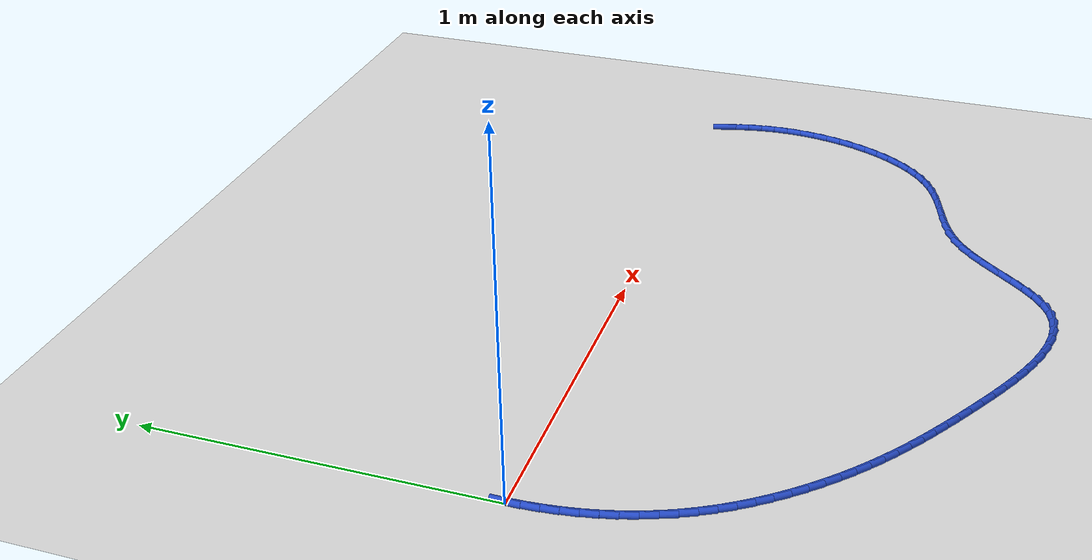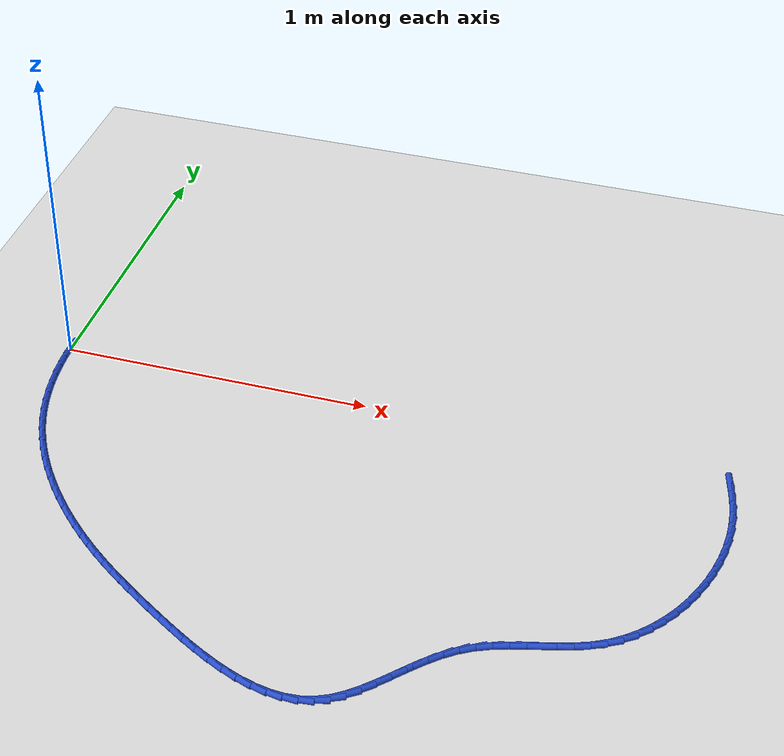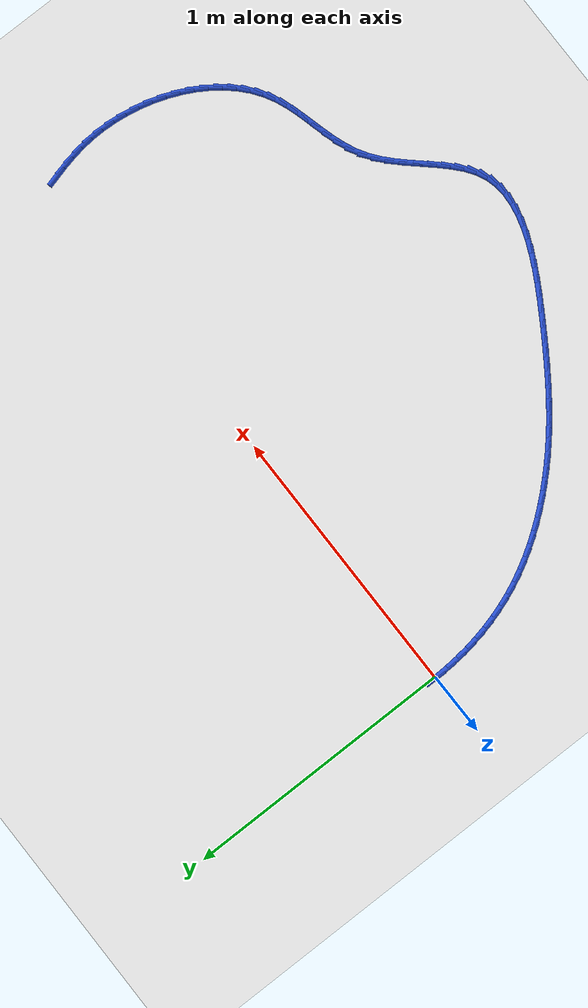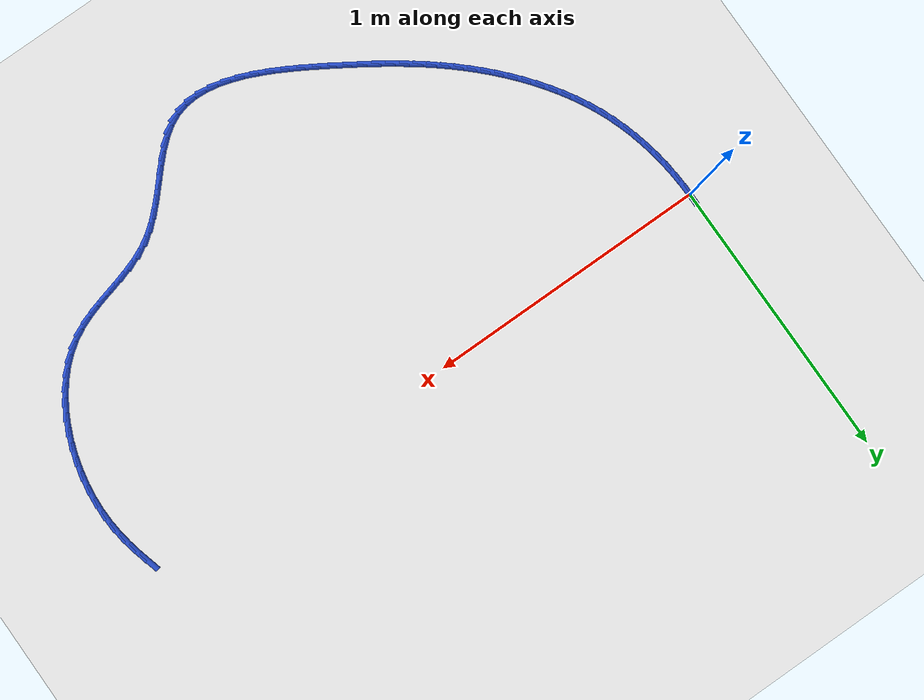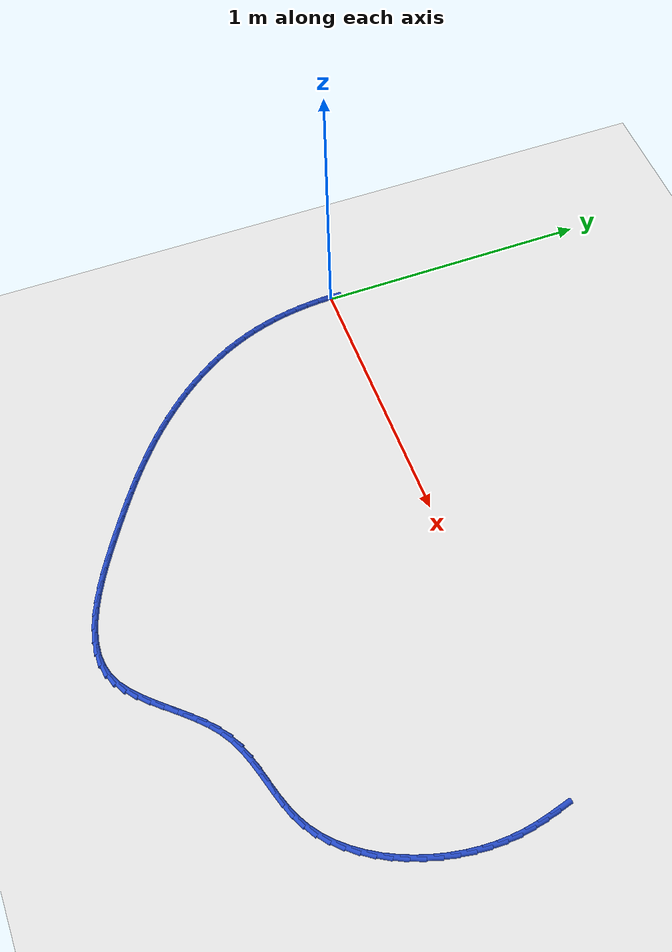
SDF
<sdf version="1.6">
 <world name="default">
  <model name="ground_plane">
   <static>1</static>
   <link name="link">
    <collision name="collision">
     <geometry><plane><normal>0 0 1</normal><size>100 100</size></plane></geometry>
     <surface><friction><ode><mu>100</mu><mu2>50</mu2></ode></friction></surface>
    </collision>
    <visual name="visual">
     <cast_shadows>0</cast_shadows>
     <geometry><plane><normal>0 0 1</normal><size>100 100</size></plane></geometry>
     <material>
      <script><uri>file://media/materials/scripts/gazebo.material</uri><name>Gazebo/WhiteGlow</name></script>
     </material>
    </visual>
   </link>
  </model>
  <model name="line">
   <link name="link_0">
    <pose>1.3877787807814457e-17 5.551115123125783e-17 0.01 0 1.57 1.5592415032549907</pose>
    <collision name="collision">
     <geometry><cylinder><radius>0.01</radius><length>0.08</length></cylinder></geometry>
    </collision>
    <visual name="visual">
     <material>
      <script><name>Gazebo/Blue</name><uri>file://media/materials/scripts/gazebo.material</uri></script>
     </material>
     <geometry><cylinder><radius>0.01</radius><length>0.08</length></cylinder></geometry>
    </visual>
   </link>
   <link name="link_75">
    <pose>2.1469257706747173 -0.03693103898274958 0.01 0 1.57 -1.3127066350233874</pose>
    <collision name="collision">
     <geometry><cylinder><radius>0.01</radius><length>0.08</length></cylinder></geometry>
    </collision>
    <visual name="visual">
     <material>
      <script><name>Gazebo/Blue</name><uri>file://media/materials/scripts/gazebo.material</uri></script>
     </material>
     <geometry><cylinder><radius>0.01</radius><length>0.08</length></cylinder></geometry>
    </visual>
   </link>
   <link name="link_76">
    <pose>2.158697349475804 -0.08152422373255834 0.01 0 1.57 -1.3564872859065393</pose>
    <collision name="collision">
     <geometry><cylinder><radius>0.01</radius><length>0.08</length></cylinder></geometry>
    </collision>
    <visual name="visual">
     <material>
      <script><name>Gazebo/Blue</name><uri>file://media/materials/scripts/gazebo.material</uri></script>
     </material>
     <geometry><cylinder><radius>0.01</radius><length>0.08</length></cylinder></geometry>
    </visual>
   </link>
   <link name="link_77">
    <pose>2.1685465352098947 -0.12677633400287774 0.01 0 1.57 -1.4130904748997954</pose>
    <collision name="collision">
     <geometry><cylinder><radius>0.01</radius><length>0.08</length></cylinder></geometry>
    </collision>
    <visual name="visual">
     <material>
      <script><name>Gazebo/Blue</name><uri>file://media/materials/scripts/gazebo.material</uri></script>
     </material>
     <geometry><cylinder><radius>0.01</radius><length>0.08</length></cylinder></geometry>
    </visual>
   </link>
   <link name="link_78">
    <pose>2.1758812569336135 -0.17289899180812152 0.01 0 1.57 -1.4814618211454147</pose>
    <collision name="collision">
     <geometry><cylinder><radius>0.01</radius><length>0.08</length></cylinder></geometry>
    </collision>
    <visual name="visual">
     <material>
      <script><name>Gazebo/Blue</name><uri>file://media/materials/scripts/gazebo.material</uri></script>
     </material>
     <geometry><cylinder><radius>0.01</radius><length>0.08</length></cylinder></geometry>
    </visual>
   </link>
   <link name="link_79">
    <pose>2.1801095236306853 -0.2201037372347708 0.01 0 1.57 -1.5568854090320874</pose>
    <collision name="collision">
     <geometry><cylinder><radius>0.01</radius><length>0.08</length></cylinder></geometry>
    </collision>
    <visual name="visual">
     <material>
      <script><name>Gazebo/Blue</name><uri>file://media/materials/scripts/gazebo.material</uri></script>
     </material>
     <geometry><cylinder><radius>0.01</radius><length>0.08</length></cylinder></geometry>
    </visual>
   </link>
   <link name="link_80">
    <pose>2.1807821870841124 -0.26845569175613304 0.01 0 1.57 1.5119288705914413</pose>
    <collision name="collision">
     <geometry><cylinder><radius>0.01</radius><length>0.08</length></cylinder></geometry>
    </collision>
    <visual name="visual">
     <material>
      <script><name>Gazebo/Blue</name><uri>file://media/materials/scripts/gazebo.material</uri></script>
     </material>
     <geometry><cylinder><radius>0.01</radius><length>0.08</length></cylinder></geometry>
    </visual>
   </link>
   <link name="link_81">
    <pose>2.177887513269734 -0.3175716127710212 0.01 0 1.57 1.4421809560744194</pose>
    <collision name="collision">
     <geometry><cylinder><radius>0.01</radius><length>0.08</length></cylinder></geometry>
    </collision>
    <visual name="visual">
     <material>
      <script><name>Gazebo/Blue</name><uri>file://media/materials/scripts/gazebo.material</uri></script>
     </material>
     <geometry><cylinder><radius>0.01</radius><length>0.08</length></cylinder></geometry>
    </visual>
   </link>
   <link name="link_82">
    <pose>2.171497209565089 -0.3669827274703546 0.01 0 1.57 1.3740507795493337</pose>
    <collision name="collision">
     <geometry><cylinder><radius>0.01</radius><length>0.08</length></cylinder></geometry>
    </collision>
    <visual name="visual">
     <material>
      <script><name>Gazebo/Blue</name><uri>file://media/materials/scripts/gazebo.material</uri></script>
     </material>
     <geometry><cylinder><radius>0.01</radius><length>0.08</length></cylinder></geometry>
    </visual>
   </link>
   <link name="link_83">
    <pose>2.1616829833477142 -0.4162202630450522 0.01 0 1.57 1.3062073753613277</pose>
    <collision name="collision">
     <geometry><cylinder><radius>0.01</radius><length>0.08</length></cylinder></geometry>
    </collision>
    <visual name="visual">
     <material>
      <script><name>Gazebo/Blue</name><uri>file://media/materials/scripts/gazebo.material</uri></script>
     </material>
     <geometry><cylinder><radius>0.01</radius><length>0.08</length></cylinder></geometry>
    </visual>
   </link>
   <link name="link_84">
    <pose>2.1485165419951495 -0.4648154466860362 0.01 0 1.57 1.2373609760402897</pose>
    <collision name="collision">
     <geometry><cylinder><radius>0.01</radius><length>0.08</length></cylinder></geometry>
    </collision>
    <visual name="visual">
     <material>
      <script><name>Gazebo/Blue</name><uri>file://media/materials/scripts/gazebo.material</uri></script>
     </material>
     <geometry><cylinder><radius>0.01</radius><length>0.08</length></cylinder></geometry>
    </visual>
   </link>
   <link name="link_85">
    <pose>2.1320695928849327 -0.5122995055842243 0.01 0 1.57 1.1662259677164022</pose>
    <collision name="collision">
     <geometry><cylinder><radius>0.01</radius><length>0.08</length></cylinder></geometry>
    </collision>
    <visual name="visual">
     <material>
      <script><name>Gazebo/Blue</name><uri>file://media/materials/scripts/gazebo.material</uri></script>
     </material>
     <geometry><cylinder><radius>0.01</radius><length>0.08</length></cylinder></geometry>
    </visual>
   </link>
   <link name="link_86">
    <pose>2.1124138433946027 -0.5582036669305385 0.01 0 1.57 1.091492674729954</pose>
    <collision name="collision">
     <geometry><cylinder><radius>0.01</radius><length>0.08</length></cylinder></geometry>
    </collision>
    <visual name="visual">
     <material>
      <script><name>Gazebo/Blue</name><uri>file://media/materials/scripts/gazebo.material</uri></script>
     </material>
     <geometry><cylinder><radius>0.01</radius><length>0.08</length></cylinder></geometry>
    </visual>
   </link>
   <link name="link_87">
    <pose>2.0896210009016967 -0.6020591579158976 0.01 0 1.57 1.0118152993485927</pose>
    <collision name="collision">
     <geometry><cylinder><radius>0.01</radius><length>0.08</length></cylinder></geometry>
    </collision>
    <visual name="visual">
     <material>
      <script><name>Gazebo/Blue</name><uri>file://media/materials/scripts/gazebo.material</uri></script>
     </material>
     <geometry><cylinder><radius>0.01</radius><length>0.08</length></cylinder></geometry>
    </visual>
   </link>
   <link name="link_88">
    <pose>2.0637627727837558 -0.6433972057312217 0.01 0 1.57 0.92582778497139</pose>
    <collision name="collision">
     <geometry><cylinder><radius>0.01</radius><length>0.08</length></cylinder></geometry>
    </collision>
    <visual name="visual">
     <material>
      <script><name>Gazebo/Blue</name><uri>file://media/materials/scripts/gazebo.material</uri></script>
     </material>
     <geometry><cylinder><radius>0.01</radius><length>0.08</length></cylinder></geometry>
    </visual>
   </link>
   <link name="link_89">
    <pose>2.034910866418315 -0.6817490375674313 0.01 0 1.57 0.8322055884221398</pose>
    <collision name="collision">
     <geometry><cylinder><radius>0.01</radius><length>0.08</length></cylinder></geometry>
    </collision>
    <visual name="visual">
     <material>
      <script><name>Gazebo/Blue</name><uri>file://media/materials/scripts/gazebo.material</uri></script>
     </material>
     <geometry><cylinder><radius>0.01</radius><length>0.08</length></cylinder></geometry>
    </visual>
   </link>
   <link name="link_90">
    <pose>2.0031369891829143 -0.7166458806154461 0.01 0 1.57 0.729796783532039</pose>
    <collision name="collision">
     <geometry><cylinder><radius>0.01</radius><length>0.08</length></cylinder></geometry>
    </collision>
    <visual name="visual">
     <material>
      <script><name>Gazebo/Blue</name><uri>file://media/materials/scripts/gazebo.material</uri></script>
     </material>
     <geometry><cylinder><radius>0.01</radius><length>0.08</length></cylinder></geometry>
    </visual>
   </link>
   <link name="link_91">
    <pose>1.968512848455094 -0.747618962066186 0.01 0 1.57 0.6178436053850168</pose>
    <collision name="collision">
     <geometry><cylinder><radius>0.01</radius><length>0.08</length></cylinder></geometry>
    </collision>
    <visual name="visual">
     <material>
      <script><name>Gazebo/Blue</name><uri>file://media/materials/scripts/gazebo.material</uri></script>
     </material>
     <geometry><cylinder><radius>0.01</radius><length>0.08</length></cylinder></geometry>
    </visual>
   </link>
   <link name="link_92">
    <pose>1.9311101516123894 -0.7741995091105713 0.01 0 1.57 0.4969777667600491</pose>
    <collision name="collision">
     <geometry><cylinder><radius>0.01</radius><length>0.08</length></cylinder></geometry>
    </collision>
    <visual name="visual">
     <material>
      <script><name>Gazebo/Blue</name><uri>file://media/materials/scripts/gazebo.material</uri></script>
     </material>
     <geometry><cylinder><radius>0.01</radius><length>0.08</length></cylinder></geometry>
    </visual>
   </link>
   <link name="link_93">
    <pose>1.8910106378430047 -0.7959488733975971 0.01 0 1.57 0.387403079853903</pose>
    <collision name="collision">
     <geometry><cylinder><radius>0.01</radius><length>0.08</length></cylinder></geometry>
    </collision>
    <visual name="visual">
     <material>
      <script><name>Gazebo/Blue</name><uri>file://media/materials/scripts/gazebo.material</uri></script>
     </material>
     <geometry><cylinder><radius>0.01</radius><length>0.08</length></cylinder></geometry>
    </visual>
   </link>
   <link name="link_94">
    <pose>1.8485742643998528 -0.8132638657677488 0.01 0 1.57 0.3114889418126547</pose>
    <collision name="collision">
     <geometry><cylinder><radius>0.01</radius><length>0.08</length></cylinder></geometry>
    </collision>
    <visual name="visual">
     <material>
      <script><name>Gazebo/Blue</name><uri>file://media/materials/scripts/gazebo.material</uri></script>
     </material>
     <geometry><cylinder><radius>0.01</radius><length>0.08</length></cylinder></geometry>
    </visual>
   </link>
   <link name="link_95">
    <pose>1.8044684633141992 -0.8274646110454188 0.01 0 1.57 0.2694813350873666</pose>
    <collision name="collision">
     <geometry><cylinder><radius>0.01</radius><length>0.08</length></cylinder></geometry>
    </collision>
    <visual name="visual">
     <material>
      <script><name>Gazebo/Blue</name><uri>file://media/materials/scripts/gazebo.material</uri></script>
     </material>
     <geometry><cylinder><radius>0.01</radius><length>0.08</length></cylinder></geometry>
    </visual>
   </link>
   <link name="link_96">
    <pose>1.7593765681151257 -0.8399189845579077 0.01 0 1.57 0.2599983697231361</pose>
    <collision name="collision">
     <geometry><cylinder><radius>0.01</radius><length>0.08</length></cylinder></geometry>
    </collision>
    <visual name="visual">
     <material>
      <script><name>Gazebo/Blue</name><uri>file://media/materials/scripts/gazebo.material</uri></script>
     </material>
     <geometry><cylinder><radius>0.01</radius><length>0.08</length></cylinder></geometry>
    </visual>
   </link>
   <link name="link_97">
    <pose>1.7139819123317095 -0.8519948616325159 0.01 0 1.57 0.28248634108478715</pose>
    <collision name="collision">
     <geometry><cylinder><radius>0.01</radius><length>0.08</length></cylinder></geometry>
    </collision>
    <visual name="visual">
     <material>
      <script><name>Gazebo/Blue</name><uri>file://media/materials/scripts/gazebo.material</uri></script>
     </material>
     <geometry><cylinder><radius>0.01</radius><length>0.08</length></cylinder></geometry>
    </visual>
   </link>
   <link name="link_98">
    <pose>1.6689678294930335 -0.8650601175965433 0.01 0 1.57 0.33748434357929835</pose>
    <collision name="collision">
     <geometry><cylinder><radius>0.01</radius><length>0.08</length></cylinder></geometry>
    </collision>
    <visual name="visual">
     <material>
      <script><name>Gazebo/Blue</name><uri>file://media/materials/scripts/gazebo.material</uri></script>
     </material>
     <geometry><cylinder><radius>0.01</radius><length>0.08</length></cylinder></geometry>
    </visual>
   </link>
   <link name="link_99">
    <pose>1.625017653128176 -0.8804826277772906 0.01 0 1.57 0.42592987642215907</pose>
    <collision name="collision">
     <geometry><cylinder><radius>0.01</radius><length>0.08</length></cylinder></geometry>
    </collision>
    <visual name="visual">
     <material>
      <script><name>Gazebo/Blue</name><uri>file://media/materials/scripts/gazebo.material</uri></script>
     </material>
     <geometry><cylinder><radius>0.01</radius><length>0.08</length></cylinder></geometry>
    </visual>
   </link>
   <link name="link_100">
    <pose>1.5828147167662177 -0.8996302675020582 0.01 0 1.57 0.5465817647725759</pose>
    <collision name="collision">
     <geometry><cylinder><radius>0.01</radius><length>0.08</length></cylinder></geometry>
    </collision>
    <visual name="visual">
     <material>
      <script><name>Gazebo/Blue</name><uri>file://media/materials/scripts/gazebo.material</uri></script>
     </material>
     <geometry><cylinder><radius>0.01</radius><length>0.08</length></cylinder></geometry>
    </visual>
   </link>
   <link name="link_101">
    <pose>1.5430275640853393 -0.9238372441814401 0.01 0 1.57 0.668185096536746</pose>
    <collision name="collision">
     <geometry><cylinder><radius>0.01</radius><length>0.08</length></cylinder></geometry>
    </collision>
    <visual name="visual">
     <material>
      <script><name>Gazebo/Blue</name><uri>file://media/materials/scripts/gazebo.material</uri></script>
     </material>
     <geometry><cylinder><radius>0.01</radius><length>0.08</length></cylinder></geometry>
    </visual>
   </link>
   <link name="link_102">
    <pose>1.505792785844387 -0.9532268168060363 0.01 0 1.57 0.7556337606834113</pose>
    <collision name="collision">
     <geometry><cylinder><radius>0.01</radius><length>0.08</length></cylinder></geometry>
    </collision>
    <visual name="visual">
     <material>
      <script><name>Gazebo/Blue</name><uri>file://media/materials/scripts/gazebo.material</uri></script>
     </material>
     <geometry><cylinder><radius>0.01</radius><length>0.08</length></cylinder></geometry>
    </visual>
   </link>
   <link name="link_103">
    <pose>1.4705798439416737 -0.9864035786908969 0.01 0 1.57 0.8100686474380663</pose>
    <collision name="collision">
     <geometry><cylinder><radius>0.01</radius><length>0.08</length></cylinder></geometry>
    </collision>
    <visual name="visual">
     <material>
      <script><name>Gazebo/Blue</name><uri>file://media/materials/scripts/gazebo.material</uri></script>
     </material>
     <geometry><cylinder><radius>0.01</radius><length>0.08</length></cylinder></geometry>
    </visual>
   </link>
   <link name="link_104">
    <pose>1.4368159399865537 -1.0218759209717354 0.01 0 1.57 0.8343534428415724</pose>
    <collision name="collision">
     <geometry><cylinder><radius>0.01</radius><length>0.08</length></cylinder></geometry>
    </collision>
    <visual name="visual">
     <material>
      <script><name>Gazebo/Blue</name><uri>file://media/materials/scripts/gazebo.material</uri></script>
     </material>
     <geometry><cylinder><radius>0.01</radius><length>0.08</length></cylinder></geometry>
    </visual>
   </link>
   <link name="link_105">
    <pose>1.4039282755883784 -1.058152234784267 0.01 0 1.57 0.8294407430921825</pose>
    <collision name="collision">
     <geometry><cylinder><radius>0.01</radius><length>0.08</length></cylinder></geometry>
    </collision>
    <visual name="visual">
     <material>
      <script><name>Gazebo/Blue</name><uri>file://media/materials/scripts/gazebo.material</uri></script>
     </material>
     <geometry><cylinder><radius>0.01</radius><length>0.08</length></cylinder></geometry>
    </visual>
   </link>
   <link name="link_106">
    <pose>1.3713440523565015 -1.0937409112642034 0.01 0 1.57 0.793786505298045</pose>
    <collision name="collision">
     <geometry><cylinder><radius>0.01</radius><length>0.08</length></cylinder></geometry>
    </collision>
    <visual name="visual">
     <material>
      <script><name>Gazebo/Blue</name><uri>file://media/materials/scripts/gazebo.material</uri></script>
     </material>
     <geometry><cylinder><radius>0.01</radius><length>0.08</length></cylinder></geometry>
    </visual>
   </link>
   <link name="link_107">
    <pose>1.3384904719002744 -1.12715034154726 0.01 0 1.57 0.7230968693319113</pose>
    <collision name="collision">
     <geometry><cylinder><radius>0.01</radius><length>0.08</length></cylinder></geometry>
    </collision>
    <visual name="visual">
     <material>
      <script><name>Gazebo/Blue</name><uri>file://media/materials/scripts/gazebo.material</uri></script>
     </material>
     <geometry><cylinder><radius>0.01</radius><length>0.08</length></cylinder></geometry>
    </visual>
   </link>
   <link name="link_108">
    <pose>1.3047947358290517 -1.1568889167691496 0.01 0 1.57 0.6106997427619202</pose>
    <collision name="collision">
     <geometry><cylinder><radius>0.01</radius><length>0.08</length></cylinder></geometry>
    </collision>
    <visual name="visual">
     <material>
      <script><name>Gazebo/Blue</name><uri>file://media/materials/scripts/gazebo.material</uri></script>
     </material>
     <geometry><cylinder><radius>0.01</radius><length>0.08</length></cylinder></geometry>
    </visual>
   </link>
   <link name="link_109">
    <pose>1.2696840457521852 -1.1814650280655854 0.01 0 1.57 0.4501552336202852</pose>
    <collision name="collision">
     <geometry><cylinder><radius>0.01</radius><length>0.08</length></cylinder></geometry>
    </collision>
    <visual name="visual">
     <material>
      <script><name>Gazebo/Blue</name><uri>file://media/materials/scripts/gazebo.material</uri></script>
     </material>
     <geometry><cylinder><radius>0.01</radius><length>0.08</length></cylinder></geometry>
    </visual>
   </link>
   <link name="link_110">
    <pose>1.2325875474404642 -1.199391782378019 0.01 0 1.57 0.2596490979789134</pose>
    <collision name="collision">
     <geometry><cylinder><radius>0.01</radius><length>0.08</length></cylinder></geometry>
    </collision>
    <visual name="visual">
     <material>
      <script><name>Gazebo/Blue</name><uri>file://media/materials/scripts/gazebo.material</uri></script>
     </material>
     <geometry><cylinder><radius>0.01</radius><length>0.08</length></cylinder></geometry>
    </visual>
   </link>
   <link name="link_111">
    <pose>1.1932105361824237 -1.2098521217015235 0.01 0 1.57 0.08519298137383632</pose>
    <collision name="collision">
     <geometry><cylinder><radius>0.01</radius><length>0.08</length></cylinder></geometry>
    </collision>
    <visual name="visual">
     <material>
      <script><name>Gazebo/Blue</name><uri>file://media/materials/scripts/gazebo.material</uri></script>
     </material>
     <geometry><cylinder><radius>0.01</radius><length>0.08</length></cylinder></geometry>
    </visual>
   </link>
   <link name="link_112">
    <pose>1.1518181747787297 -1.2133870164212621 0.01 0 1.57 -0.06225919238581242</pose>
    <collision name="collision">
     <geometry><cylinder><radius>0.01</radius><length>0.08</length></cylinder></geometry>
    </collision>
    <visual name="visual">
     <material>
      <script><name>Gazebo/Blue</name><uri>file://media/materials/scripts/gazebo.material</uri></script>
     </material>
     <geometry><cylinder><radius>0.01</radius><length>0.08</length></cylinder></geometry>
    </visual>
   </link>
   <link name="link_113">
    <pose>1.108743363673469 -1.2107017430142057 0.01 0 1.57 -0.18253252692380043</pose>
    <collision name="collision">
     <geometry><cylinder><radius>0.01</radius><length>0.08</length></cylinder></geometry>
    </collision>
    <visual name="visual">
     <material>
      <script><name>Gazebo/Blue</name><uri>file://media/materials/scripts/gazebo.material</uri></script>
     </material>
     <geometry><cylinder><radius>0.01</radius><length>0.08</length></cylinder></geometry>
    </visual>
   </link>
   <link name="link_114">
    <pose>1.0643190033107317 -1.202501577957325 0.01 0 1.57 -0.27884147722151564</pose>
    <collision name="collision">
     <geometry><cylinder><radius>0.01</radius><length>0.08</length></cylinder></geometry>
    </collision>
    <visual name="visual">
     <material>
      <script><name>Gazebo/Blue</name><uri>file://media/materials/scripts/gazebo.material</uri></script>
     </material>
     <geometry><cylinder><radius>0.01</radius><length>0.08</length></cylinder></geometry>
    </visual>
   </link>
   <link name="link_115">
    <pose>1.0188779941346053 -1.1894917977275905 0.01 0 1.57 -0.3552941657886452</pose>
    <collision name="collision">
     <geometry><cylinder><radius>0.01</radius><length>0.08</length></cylinder></geometry>
    </collision>
    <visual name="visual">
     <material>
      <script><name>Gazebo/Blue</name><uri>file://media/materials/scripts/gazebo.material</uri></script>
     </material>
     <geometry><cylinder><radius>0.01</radius><length>0.08</length></cylinder></geometry>
    </visual>
   </link>
   <link name="link_116">
    <pose>0.9727532365891797 -1.172377678801974 0.01 0 1.57 -0.4156584618102622</pose>
    <collision name="collision">
     <geometry><cylinder><radius>0.01</radius><length>0.08</length></cylinder></geometry>
    </collision>
    <visual name="visual">
     <material>
      <script><name>Gazebo/Blue</name><uri>file://media/materials/scripts/gazebo.material</uri></script>
     </material>
     <geometry><cylinder><radius>0.01</radius><length>0.08</length></cylinder></geometry>
    </visual>
   </link>
   <link name="link_117">
    <pose>0.9262776311185437 -1.151864497657446 0.01 0 1.57 -0.4629623832879337</pose>
    <collision name="collision">
     <geometry><cylinder><radius>0.01</radius><length>0.08</length></cylinder></geometry>
    </collision>
    <visual name="visual">
     <material>
      <script><name>Gazebo/Blue</name><uri>file://media/materials/scripts/gazebo.material</uri></script>
     </material>
     <geometry><cylinder><radius>0.01</radius><length>0.08</length></cylinder></geometry>
    </visual>
   </link>
   <link name="link_118">
    <pose>0.8797840781667849 -1.1286575307709767 0.01 0 1.57 -0.4994660256764227</pose>
    <collision name="collision">
     <geometry><cylinder><radius>0.01</radius><length>0.08</length></cylinder></geometry>
    </collision>
    <visual name="visual">
     <material>
      <script><name>Gazebo/Blue</name><uri>file://media/materials/scripts/gazebo.material</uri></script>
     </material>
     <geometry><cylinder><radius>0.01</radius><length>0.08</length></cylinder></geometry>
    </visual>
   </link>
   <link name="link_119">
    <pose>0.8336054781779936 -1.1034620546195384 0.01 0 1.57 -0.5267478230320811</pose>
    <collision name="collision">
     <geometry><cylinder><radius>0.01</radius><length>0.08</length></cylinder></geometry>
    </collision>
    <visual name="visual">
     <material>
      <script><name>Gazebo/Blue</name><uri>file://media/materials/scripts/gazebo.material</uri></script>
     </material>
     <geometry><cylinder><radius>0.01</radius><length>0.08</length></cylinder></geometry>
    </visual>
   </link>
   <link name="link_120">
    <pose>0.7880747315962571 -1.0769833456801008 0.01 0 1.57 -0.5457937189918992</pose>
    <collision name="collision">
     <geometry><cylinder><radius>0.01</radius><length>0.08</length></cylinder></geometry>
    </collision>
    <visual name="visual">
     <material>
      <script><name>Gazebo/Blue</name><uri>file://media/materials/scripts/gazebo.material</uri></script>
     </material>
     <geometry><cylinder><radius>0.01</radius><length>0.08</length></cylinder></geometry>
    </visual>
   </link>
   <link name="link_121">
    <pose>0.7435247388656648 -1.049926680429635 0.01 0 1.57 -0.5572820339371263</pose>
    <collision name="collision">
     <geometry><cylinder><radius>0.01</radius><length>0.08</length></cylinder></geometry>
    </collision>
    <visual name="visual">
     <material>
      <script><name>Gazebo/Blue</name><uri>file://media/materials/scripts/gazebo.material</uri></script>
     </material>
     <geometry><cylinder><radius>0.01</radius><length>0.08</length></cylinder></geometry>
    </visual>
   </link>
   <link name="link_122">
    <pose>0.7002788568357701 -1.0229771587679108 0.01 0 1.57 -0.566297392152821</pose>
    <collision name="collision">
     <geometry><cylinder><radius>0.01</radius><length>0.08</length></cylinder></geometry>
    </collision>
    <visual name="visual">
     <material>
      <script><name>Gazebo/Blue</name><uri>file://media/materials/scripts/gazebo.material</uri></script>
     </material>
     <geometry><cylinder><radius>0.01</radius><length>0.08</length></cylinder></geometry>
    </visual>
   </link>
   <link name="link_123">
    <pose>0.6584562173058348 -0.9963881184868222 0.01 0 1.57 -0.5777658463821104</pose>
    <collision name="collision">
     <geometry><cylinder><radius>0.01</radius><length>0.08</length></cylinder></geometry>
    </collision>
    <visual name="visual">
     <material>
      <script><name>Gazebo/Blue</name><uri>file://media/materials/scripts/gazebo.material</uri></script>
     </material>
     <geometry><cylinder><radius>0.01</radius><length>0.08</length></cylinder></geometry>
    </visual>
   </link>
   <link name="link_124">
    <pose>0.617979870420456 -0.9699983516189895 0.01 0 1.57 -0.5919669921576131</pose>
    <collision name="collision">
     <geometry><cylinder><radius>0.01</radius><length>0.08</length></cylinder></geometry>
    </collision>
    <visual name="visual">
     <material>
      <script><name>Gazebo/Blue</name><uri>file://media/materials/scripts/gazebo.material</uri></script>
     </material>
     <geometry><cylinder><radius>0.01</radius><length>0.08</length></cylinder></geometry>
    </visual>
   </link>
   <link name="link_125">
    <pose>0.5787649522542438 -0.9436299186769087 0.01 0 1.57 -0.6089274101310659</pose>
    <collision name="collision">
     <geometry><cylinder><radius>0.01</radius><length>0.08</length></cylinder></geometry>
    </collision>
    <visual name="visual">
     <material>
      <script><name>Gazebo/Blue</name><uri>file://media/materials/scripts/gazebo.material</uri></script>
     </material>
     <geometry><cylinder><radius>0.01</radius><length>0.08</length></cylinder></geometry>
    </visual>
   </link>
   <link name="link_126">
    <pose>0.5407265988818074 -0.9171048801730749 0.01 0 1.57 -0.6286066793459624</pose>
    <collision name="collision">
     <geometry><cylinder><radius>0.01</radius><length>0.08</length></cylinder></geometry>
    </collision>
    <visual name="visual">
     <material>
      <script><name>Gazebo/Blue</name><uri>file://media/materials/scripts/gazebo.material</uri></script>
     </material>
     <geometry><cylinder><radius>0.01</radius><length>0.08</length></cylinder></geometry>
    </visual>
   </link>
   <link name="link_127">
    <pose>0.5037799463777586 -0.8902452966199846 0.01 0 1.57 -0.6508892299468675</pose>
    <collision name="collision">
     <geometry><cylinder><radius>0.01</radius><length>0.08</length></cylinder></geometry>
    </collision>
    <visual name="visual">
     <material>
      <script><name>Gazebo/Blue</name><uri>file://media/materials/scripts/gazebo.material</uri></script>
     </material>
     <geometry><cylinder><radius>0.01</radius><length>0.08</length></cylinder></geometry>
    </visual>
   </link>
   <link name="link_128">
    <pose>0.467840130816706 -0.8628732285301329 0.01 0 1.57 -0.6755799866561397</pose>
    <collision name="collision">
     <geometry><cylinder><radius>0.01</radius><length>0.08</length></cylinder></geometry>
    </collision>
    <visual name="visual">
     <material>
      <script><name>Gazebo/Blue</name><uri>file://media/materials/scripts/gazebo.material</uri></script>
     </material>
     <geometry><cylinder><radius>0.01</radius><length>0.08</length></cylinder></geometry>
    </visual>
   </link>
   <link name="link_129">
    <pose>0.4328222882732607 -0.834810736416016 0.01 0 1.57 -0.7024051832935033</pose>
    <collision name="collision">
     <geometry><cylinder><radius>0.01</radius><length>0.08</length></cylinder></geometry>
    </collision>
    <visual name="visual">
     <material>
      <script><name>Gazebo/Blue</name><uri>file://media/materials/scripts/gazebo.material</uri></script>
     </material>
     <geometry><cylinder><radius>0.01</radius><length>0.08</length></cylinder></geometry>
    </visual>
   </link>
   <link name="link_130">
    <pose>0.3986415548220334 -0.8058798807901297 0.01 0 1.57 -0.7310192992767023</pose>
    <collision name="collision">
     <geometry><cylinder><radius>0.01</radius><length>0.08</length></cylinder></geometry>
    </collision>
    <visual name="visual">
     <material>
      <script><name>Gazebo/Blue</name><uri>file://media/materials/scripts/gazebo.material</uri></script>
     </material>
     <geometry><cylinder><radius>0.01</radius><length>0.08</length></cylinder></geometry>
    </visual>
   </link>
   <link name="link_131">
    <pose>0.3652130665376331 -0.7759027221649694 0.01 0 1.57 -0.7610183048565142</pose>
    <collision name="collision">
     <geometry><cylinder><radius>0.01</radius><length>0.08</length></cylinder></geometry>
    </collision>
    <visual name="visual">
     <material>
      <script><name>Gazebo/Blue</name><uri>file://media/materials/scripts/gazebo.material</uri></script>
     </material>
     <geometry><cylinder><radius>0.01</radius><length>0.08</length></cylinder></geometry>
    </visual>
   </link>
   <link name="link_132">
    <pose>0.33245195949467127 -0.7447013210530316 0.01 0 1.57 -0.7920580604498861</pose>
    <collision name="collision">
     <geometry><cylinder><radius>0.01</radius><length>0.08</length></cylinder></geometry>
    </collision>
    <visual name="visual">
     <material>
      <script><name>Gazebo/Blue</name><uri>file://media/materials/scripts/gazebo.material</uri></script>
     </material>
     <geometry><cylinder><radius>0.01</radius><length>0.08</length></cylinder></geometry>
    </visual>
   </link>
   <link name="link_133">
    <pose>0.3003133280772424 -0.7121317331851166 0.01 0 1.57 -0.8244023174409412</pose>
    <collision name="collision">
     <geometry><cylinder><radius>0.01</radius><length>0.08</length></cylinder></geometry>
    </collision>
    <visual name="visual">
     <material>
      <script><name>Gazebo/Blue</name><uri>file://media/materials/scripts/gazebo.material</uri></script>
     </material>
     <geometry><cylinder><radius>0.01</radius><length>0.08</length></cylinder></geometry>
    </visual>
   </link>
   <link name="link_134">
    <pose>0.26893732642813756 -0.6782074570611882 0.01 0 1.57 -0.8583984187604581</pose>
    <collision name="collision">
     <geometry><cylinder><radius>0.01</radius><length>0.08</length></cylinder></geometry>
    </collision>
    <visual name="visual">
     <material>
      <script><name>Gazebo/Blue</name><uri>file://media/materials/scripts/gazebo.material</uri></script>
     </material>
     <geometry><cylinder><radius>0.01</radius><length>0.08</length></cylinder></geometry>
    </visual>
   </link>
   <link name="link_135">
    <pose>0.23851764494766103 -0.6429875380720794 0.01 0 1.57 -0.894310737870785</pose>
    <collision name="collision">
     <geometry><cylinder><radius>0.01</radius><length>0.08</length></cylinder></geometry>
    </collision>
    <visual name="visual">
     <material>
      <script><name>Gazebo/Blue</name><uri>file://media/materials/scripts/gazebo.material</uri></script>
     </material>
     <geometry><cylinder><radius>0.01</radius><length>0.08</length></cylinder></geometry>
    </visual>
   </link>
   <link name="link_136">
    <pose>0.20924797942561482 -0.60653102619383 0.01 0 1.57 -0.9324094596574781</pose>
    <collision name="collision">
     <geometry><cylinder><radius>0.01</radius><length>0.08</length></cylinder></geometry>
    </collision>
    <visual name="visual">
     <material>
      <script><name>Gazebo/Blue</name><uri>file://media/materials/scripts/gazebo.material</uri></script>
     </material>
     <geometry><cylinder><radius>0.01</radius><length>0.08</length></cylinder></geometry>
    </visual>
   </link>
   <link name="link_137">
    <pose>0.18132202565180264 -0.5688969714024821 0.01 0 1.57 -0.9729703586565399</pose>
    <collision name="collision">
     <geometry><cylinder><radius>0.01</radius><length>0.08</length></cylinder></geometry>
    </collision>
    <visual name="visual">
     <material>
      <script><name>Gazebo/Blue</name><uri>file://media/materials/scripts/gazebo.material</uri></script>
     </material>
     <geometry><cylinder><radius>0.01</radius><length>0.08</length></cylinder></geometry>
    </visual>
   </link>
   <link name="link_138">
    <pose>0.15493347941602817 -0.5301444236740774 0.01 0 1.57 -1.0162723145882224</pose>
    <collision name="collision">
     <geometry><cylinder><radius>0.01</radius><length>0.08</length></cylinder></geometry>
    </collision>
    <visual name="visual">
     <material>
      <script><name>Gazebo/Blue</name><uri>file://media/materials/scripts/gazebo.material</uri></script>
     </material>
     <geometry><cylinder><radius>0.01</radius><length>0.08</length></cylinder></geometry>
    </visual>
   </link>
   <link name="link_139">
    <pose>0.1302760365080937 -0.4903324329846563 0.01 0 1.57 -1.0625919938532085</pose>
    <collision name="collision">
     <geometry><cylinder><radius>0.01</radius><length>0.08</length></cylinder></geometry>
    </collision>
    <visual name="visual">
     <material>
      <script><name>Gazebo/Blue</name><uri>file://media/materials/scripts/gazebo.material</uri></script>
     </material>
     <geometry><cylinder><radius>0.01</radius><length>0.08</length></cylinder></geometry>
    </visual>
   </link>
   <link name="link_140">
    <pose>0.10754339271780321 -0.44952004931026107 0.01 0 1.57 -1.1121949756917366</pose>
    <collision name="collision">
     <geometry><cylinder><radius>0.01</radius><length>0.08</length></cylinder></geometry>
    </collision>
    <visual name="visual">
     <material>
      <script><name>Gazebo/Blue</name><uri>file://media/materials/scripts/gazebo.material</uri></script>
     </material>
     <geometry><cylinder><radius>0.01</radius><length>0.08</length></cylinder></geometry>
    </visual>
   </link>
   <link name="link_141">
    <pose>0.08692924383495916 -0.40776632262693174 0.01 0 1.57 -1.1645860557320769</pose>
    <collision name="collision">
     <geometry><cylinder><radius>0.01</radius><length>0.08</length></cylinder></geometry>
    </collision>
    <visual name="visual">
     <material>
      <script><name>Gazebo/Blue</name><uri>file://media/materials/scripts/gazebo.material</uri></script>
     </material>
     <geometry><cylinder><radius>0.01</radius><length>0.08</length></cylinder></geometry>
    </visual>
   </link>
   <link name="link_142">
    <pose>0.06859043659458498 -0.36513111762145367 0.01 0 1.57 -1.2166697935261235</pose>
    <collision name="collision">
     <geometry><cylinder><radius>0.01</radius><length>0.08</length></cylinder></geometry>
    </collision>
    <visual name="visual">
     <material>
      <script><name>Gazebo/Blue</name><uri>file://media/materials/scripts/gazebo.material</uri></script>
     </material>
     <geometry><cylinder><radius>0.01</radius><length>0.08</length></cylinder></geometry>
    </visual>
   </link>
   <link name="link_143">
    <pose>0.05252522765324548 -0.32167780531317564 0.01 0 1.57 -1.2674727931370466</pose>
    <collision name="collision">
     <geometry><cylinder><radius>0.01</radius><length>0.08</length></cylinder></geometry>
    </collision>
    <visual name="visual">
     <material>
      <script><name>Gazebo/Blue</name><uri>file://media/materials/scripts/gazebo.material</uri></script>
     </material>
     <geometry><cylinder><radius>0.01</radius><length>0.08</length></cylinder></geometry>
    </visual>
   </link>
   <link name="link_144">
    <pose>0.038689218377718215 -0.27747069980459893 0.01 0 1.57 -1.3168852899056773</pose>
    <collision name="collision">
     <geometry><cylinder><radius>0.01</radius><length>0.08</length></cylinder></geometry>
    </collision>
    <visual name="visual">
     <material>
      <script><name>Gazebo/Blue</name><uri>file://media/materials/scripts/gazebo.material</uri></script>
     </material>
     <geometry><cylinder><radius>0.01</radius><length>0.08</length></cylinder></geometry>
    </visual>
   </link>
   <link name="link_145">
    <pose>0.027038009558956907 -0.23257411521095925 0.01 0 1.57 -1.3648302442466076</pose>
    <collision name="collision">
     <geometry><cylinder><radius>0.01</radius><length>0.08</length></cylinder></geometry>
    </collision>
    <visual name="visual">
     <material>
      <script><name>Gazebo/Blue</name><uri>file://media/materials/scripts/gazebo.material</uri></script>
     </material>
     <geometry><cylinder><radius>0.01</radius><length>0.08</length></cylinder></geometry>
    </visual>
   </link>
   <link name="link_146">
    <pose>0.017527201987914437 -0.18705236564748934 0.01 0 1.57 -1.4112612177372623</pose>
    <collision name="collision">
     <geometry><cylinder><radius>0.01</radius><length>0.08</length></cylinder></geometry>
    </collision>
    <visual name="visual">
     <material>
      <script><name>Gazebo/Blue</name><uri>file://media/materials/scripts/gazebo.material</uri></script>
     </material>
     <geometry><cylinder><radius>0.01</radius><length>0.08</length></cylinder></geometry>
    </visual>
   </link>
   <link name="link_147">
    <pose>0.010112396455544254 -0.14096976522942414 0.01 0 1.57 -1.4561594165029743</pose>
    <collision name="collision">
     <geometry><cylinder><radius>0.01</radius><length>0.08</length></cylinder></geometry>
    </collision>
    <visual name="visual">
     <material>
      <script><name>Gazebo/Blue</name><uri>file://media/materials/scripts/gazebo.material</uri></script>
     </material>
     <geometry><cylinder><radius>0.01</radius><length>0.08</length></cylinder></geometry>
    </visual>
   </link>
   <link name="link_148">
    <pose>0.004749193752799691 -0.09439062807199851 0.01 0 1.57 -1.499530240708086</pose>
    <collision name="collision">
     <geometry><cylinder><radius>0.01</radius><length>0.08</length></cylinder></geometry>
    </collision>
    <visual name="visual">
     <material>
      <script><name>Gazebo/Blue</name><uri>file://media/materials/scripts/gazebo.material</uri></script>
     </material>
     <geometry><cylinder><radius>0.01</radius><length>0.08</length></cylinder></geometry>
    </visual>
   </link>
   <link name="link_149">
    <pose>0.0013931946706338084 -0.04737926829044515 0.01 0 1.57 -1.5413996437921984</pose>
    <collision name="collision">
     <geometry><cylinder><radius>0.01</radius><length>0.08</length></cylinder></geometry>
    </collision>
    <visual name="visual">
     <material>
      <script><name>Gazebo/Blue</name><uri>file://media/materials/scripts/gazebo.material</uri></script>
     </material>
     <geometry><cylinder><radius>0.01</radius><length>0.08</length></cylinder></geometry>
    </visual>
   </link>
  </model>
 </world>
</sdf>
